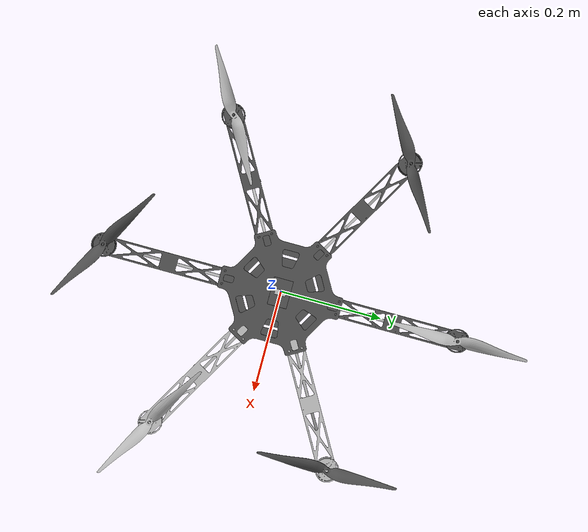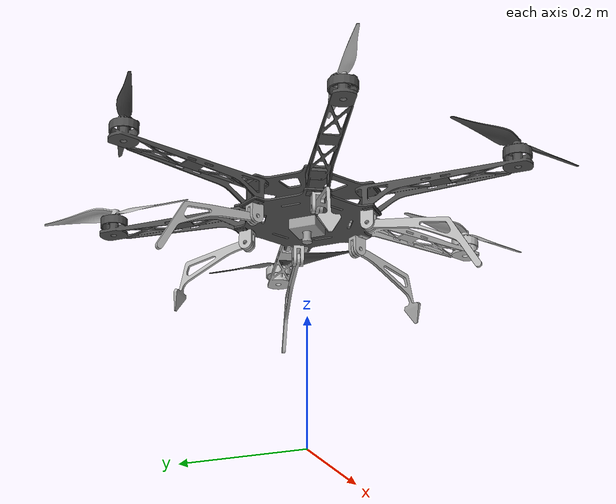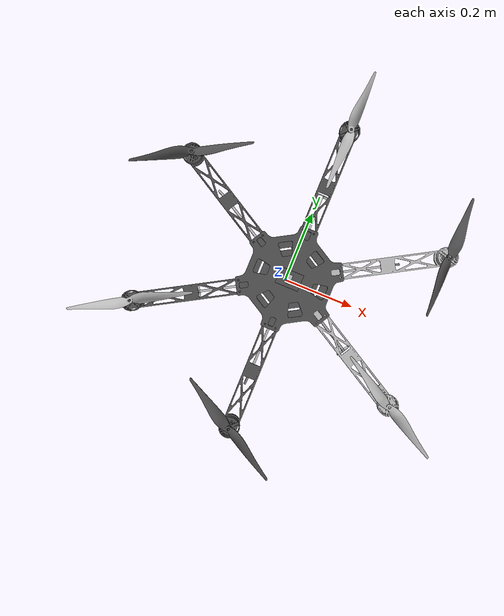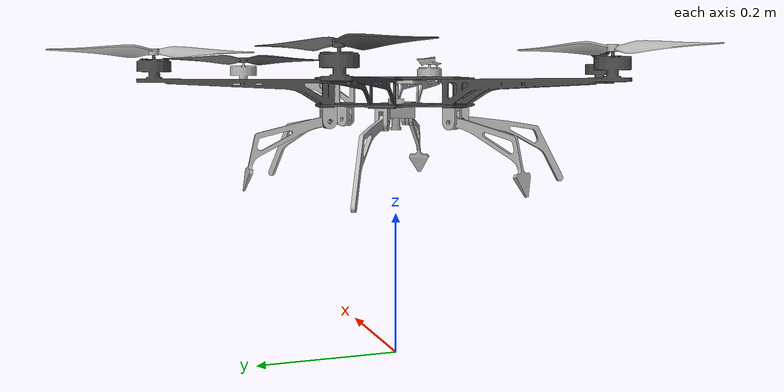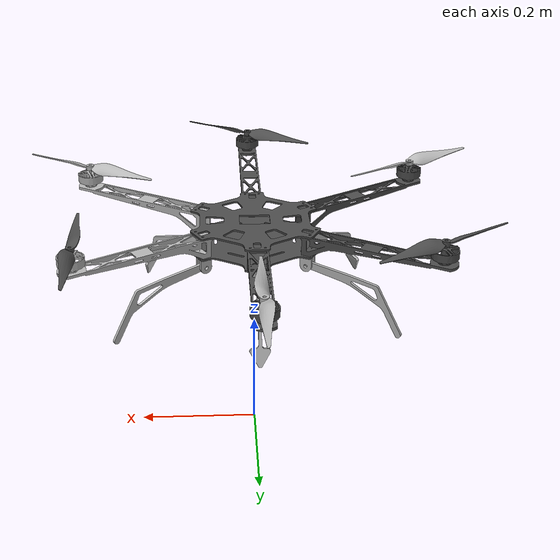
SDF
<?xml version="1.0" ?>
<sdf version="1.5">
  <model name="f550_amazing">
    <static>false</static>
    <pose>0 0 0.35 0 0 0</pose>

<!-- ######################################## LOWER_PLATE # ######################################## -->
    <link name="base_link">
	<gravity>true</gravity>
	<pose>0 0 0.0015 0 0 0</pose>

      <inertial>
        <pose frame=''>0.001005 0 -0.0090035 0 -0 0</pose>
        <mass>0.6</mass>
        <inertia>
          <ixx>0.011</ixx>
          <ixy>0</ixy>
          <ixz>0</ixz>
          <iyy>0.015</iyy>
          <iyz>0</iyz>
          <izz>0.021</izz>
        </inertia>
      </inertial>

      <visual name="base_link_visual">
        <geometry>
          <mesh>
            <scale>0.001 0.001 0.001</scale>
            <uri>model://f550_amazing/meshes/Lower_plate_CG.STL</uri>
          </mesh>
        </geometry>
        <material>
          <script>
            <name>Gazebo/DarkGrey</name>
            <uri>file://media/materials/scripts/gazebo.material</uri>
          </script>
        </material>
      </visual>
    </link>
<!-- ####################################### /LOWER_PLATE # ######################################## -->

<!-- ######################################## TOP_PLATE ############################################ -->
    <link name="Top_plate_link">
	<gravity>true</gravity>
	<pose>0 0 0.0375 0 0 2.09439510239</pose>

      <inertial>
        <mass>0.1</mass>
        <inertia>
          <ixx>0.001</ixx>
          <ixy>0</ixy>
          <ixz>0</ixz>
          <iyy>0.001</iyy>
          <iyz>0</iyz>
          <izz>0.001</izz>
        </inertia>
      </inertial>

      <visual name="visual_Top_plate">
        <geometry>
          <mesh>
            <scale>0.001 0.001 0.001</scale>
            <uri>model://f550_amazing/meshes/Top_plate_CG.STL</uri>
          </mesh>
        </geometry>
        <material>
          <script>
            <name>Gazebo/DarkGrey</name>
            <uri>file://media/materials/scripts/gazebo.material</uri>
          </script>
        </material>
      </visual>
    </link>

	<joint name='Lower_Top_joint' type='fixed'>
	  	<child>Top_plate_link</child>
	  	<parent>base_link</parent>
	</joint>
<!-- ####################################### /TOP_PLATE ############################################ -->

<!-- ##########################################  CAMERA  ########################################### -->
    <link name='camera_down_link'>
      <pose>0 0 0 0 1.57079 3.14159265359</pose>

	  <inertial>
        <mass>0.001</mass>
          <inertia>
			<ixx>0.001</ixx>
			<ixy>0</ixy>
			<ixz>0</ixz>
			<iyy>0.001</iyy>
			<iyz>0</iyz>
			<izz>0.001</izz>
          </inertia>
      </inertial>
	  <gravity>1</gravity>
	  <self_collide>0</self_collide>
      <kinematic>0</kinematic>

	  <visual name='visual_camera_down'>
		<pose>0 0 0 0 -1.57079 0</pose>
		<geometry>
          <mesh>
            <scale>0.001 0.001 0.001</scale>
            <uri>model://f550_amazing/meshes/oCam-1MGN-U_CG.stl</uri>
          </mesh>
        </geometry>
        <material>
          <script>
            <name>Gazebo/Grey</name>
            <uri>file://media/materials/scripts/gazebo.material</uri>
          </script>
        </material>
      </visual>

      <sensor name='camera' type='camera'>
        <always_on>1</always_on>
        <update_rate>30</update_rate>
        <camera name='__default__'>
          <horizontal_fov>1.13446</horizontal_fov>
          <image>
            <width>1280</width>
            <height>720</height>
          </image>
          <clip>
            <near>0.1</near>
            <far>100</far>
          </clip>
        </camera>
        <plugin name='camera_plugin' filename='libgazebo_ros_camera.so'>
          <alwaysOn>true</alwaysOn>
          <imageTopicName>image_raw_down</imageTopicName>
          <cameraInfoTopicName>camera_info</cameraInfoTopicName>
          <updateRate>10.0</updateRate>
          <cameraName>uav_camera</cameraName>
          <frameName>f550_amazing/robot_camera_down</frameName>
          <CxPrime>640.5</CxPrime>
          <Cx>640.5</Cx>
          <Cy>360.5</Cy>
          <hackBaseline>0</hackBaseline>
          <focalLength>1004.603218</focalLength>
          <distortionK1>0.0</distortionK1>
          <distortionK2>0.0</distortionK2>
          <distortionK3>0.0</distortionK3>
          <distortionT1>0.0</distortionT1>
          <distortionT2>0.0</distortionT2>
          <robotNamespace>/</robotNamespace>
        </plugin>
      </sensor>

    </link>

	<joint name='camera_down_joint' type='fixed'>
        <parent>base_link</parent>
        <child>camera_down_link</child>
	</joint>

<!-- ##########################################  /CAMERA  ########################################## -->

<!-- ##########################################  IMU  ############################################## -->
    <link name='imu_link'>
      <pose frame=''>0 0 0 0 0 3.1415927</pose>
      <inertial>
        <pose frame=''>0 0 0 0 -0 0</pose>
        <mass>0.015</mass>
        <inertia>
          <ixx>1e-05</ixx>
          <ixy>0</ixy>
          <ixz>0</ixz>
          <iyy>1e-05</iyy>
          <iyz>0</iyz>
          <izz>1e-05</izz>
        </inertia>
      </inertial>

      <visual name="visual_imu">
	      <pose frame=''>0 0 0 0 0 3.1415927</pose>
        <geometry>
          <box>
			<size>0.01 0.02 0.02</size>
          </box>
        </geometry>
      </visual>
    </link>

    <joint name='imu_joint' type='revolute'>
      <child>imu_link</child>
      <parent>base_link</parent>
      <axis>
        <xyz>1 0 0</xyz>
        <limit>
          <lower>0</lower>
          <upper>0</upper>
          <effort>0</effort>
          <velocity>0</velocity>
        </limit>
        <dynamics>
          <spring_reference>0</spring_reference>
          <spring_stiffness>0</spring_stiffness>
        </dynamics>
        <use_parent_model_frame>1</use_parent_model_frame>
      </axis>
    </joint>
<!-- #########################################  /IMU  ############################################## -->

<!-- ############################################# ARM1 ############################################ -->
    <link name="Arm1_link">
	<gravity>true</gravity>
	<pose>0 0.1874 0.009875004 0 0 1.57079632679</pose>

	<inertial>
	<mass>0.1</mass>
		<inertia>
			<ixx>0.001</ixx>
			<ixy>0</ixy>
			<ixz>0</ixz>
			<iyy>0.001</iyy>
			<iyz>0</iyz>
			<izz>0.001</izz>
		</inertia>
	</inertial>

		<visual name="visual_Arm1">
			<geometry>
				<mesh>
					<scale>0.001 0.001 0.001</scale>
					<uri>model://f550_amazing/meshes/Arm_CG.STL</uri>
				</mesh>
			</geometry>
			<material>
				<script>
					<name>Gazebo/DarkGrey</name>
					<uri>file://media/materials/scripts/gazebo.material</uri>
				</script>
			</material>
		</visual>
	</link>

	<joint name='Lower_Arm1_joint' type='fixed'>
	  	<child>Arm1_link</child>
	  	<parent>base_link</parent>
	</joint>
<!-- ############################################ /ARM1 ############################################ -->

<!-- ############################################# ARM2 ############################################ -->
    <link name="Arm2_link">
	<gravity>true</gravity>
	<pose>0.162293160669 0.0937 0.009875004 0 0 0.523598775598</pose>

      <inertial>
        <mass>0.1</mass>
        <inertia>
          <ixx>0.001</ixx>
          <ixy>0</ixy>
          <ixz>0</ixz>
          <iyy>0.001</iyy>
          <iyz>0</iyz>
          <izz>0.001</izz>
        </inertia>
      </inertial>

      <visual name="visual_Arm2">
        <geometry>
          <mesh>
            <scale>0.001 0.001 0.001</scale>
            <uri>model://f550_amazing/meshes/Arm_CG.STL</uri>
          </mesh>
        </geometry>
      </visual>
    </link>

	<joint name='Lower_Arm2_joint' type='fixed'>
	  	<child>Arm2_link</child>
	  	<parent>base_link</parent>
	</joint>
<!-- ############################################ /ARM2 ############################################ -->

<!-- ############################################# ARM3 ############################################ -->
    <link name="Arm3_link">
	<gravity>true</gravity>
	<pose>0.162293160669 -0.0937 0.009875004 0 0 -0.523598775598</pose>

      <inertial>
        <mass>0.1</mass>
        <inertia>
          <ixx>0.001</ixx>
          <ixy>0</ixy>
          <ixz>0</ixz>
          <iyy>0.001</iyy>
          <iyz>0</iyz>
          <izz>0.001</izz>
        </inertia>
      </inertial>

      <visual name="visual_Arm3">
        <geometry>
          <mesh>
            <scale>0.001 0.001 0.001</scale>
            <uri>model://f550_amazing/meshes/Arm_CG.STL</uri>
          </mesh>
        </geometry>
      </visual>
    </link>

	<joint name='Lower_Arm3_joint' type='fixed'>
	  	<child>Arm3_link</child>
	  	<parent>base_link</parent>
	</joint>
<!-- ############################################ /ARM3 ############################################ -->

<!-- ############################################# ARM4 ############################################ -->
    <link name="Arm4_link">
	<gravity>true</gravity>
	<pose>0 -0.1874 0.009875004 0 0 -1.57079632679</pose>

      <inertial>
        <mass>0.1</mass>
        <inertia>
          <ixx>0.001</ixx>
          <ixy>0</ixy>
          <ixz>0</ixz>
          <iyy>0.001</iyy>
          <iyz>0</iyz>
          <izz>0.001</izz>
        </inertia>
      </inertial>

      <visual name="visual_Arm4">
        <geometry>
          <mesh>
            <scale>0.001 0.001 0.001</scale>
            <uri>model://f550_amazing/meshes/Arm_CG.STL</uri>
          </mesh>
        </geometry>
        <material>
          <script>
            <name>Gazebo/DarkGrey</name>
            <uri>file://media/materials/scripts/gazebo.material</uri>
          </script>
        </material>
      </visual>
    </link>

	<joint name='Lower_Arm4_joint' type='fixed'>
	  	<child>Arm4_link</child>
	  	<parent>base_link</parent>
	</joint>
<!-- ############################################ /ARM4 ############################################ -->

<!-- ############################################# ARM5 ############################################ -->
    <link name="Arm5_link">
	<gravity>true</gravity>
	<pose>-0.162293160669 -0.0937 0.009875004 0 0 3.66519142919</pose>

      <inertial>
        <mass>0.1</mass>
        <inertia>
          <ixx>0.001</ixx>
          <ixy>0</ixy>
          <ixz>0</ixz>
          <iyy>0.001</iyy>
          <iyz>0</iyz>
          <izz>0.001</izz>
        </inertia>
      </inertial>

      <visual name="visual_Arm5">
        <geometry>
          <mesh>
            <scale>0.001 0.001 0.001</scale>
            <uri>model://f550_amazing/meshes/Arm_CG.STL</uri>
          </mesh>
        </geometry>
        <material>
          <script>
            <name>Gazebo/DarkGrey</name>
            <uri>file://media/materials/scripts/gazebo.material</uri>
          </script>
        </material>
      </visual>
    </link>

	<joint name='Lower_Arm5_joint' type='fixed'>
	  	<child>Arm5_link</child>
	  	<parent>base_link</parent>
	</joint>
<!-- ############################################ /ARM5 ############################################ -->

<!-- ############################################# ARM6 ############################################ -->
    <link name="Arm6_link">
	<gravity>true</gravity>
	<pose>-0.162293160669 0.0937 0.009875004 0 0 2.61799387799</pose>

      <inertial>
        <mass>0.1</mass>
        <inertia>
          <ixx>0.001</ixx>
          <ixy>0</ixy>
          <ixz>0</ixz>
          <iyy>0.001</iyy>
          <iyz>0</iyz>
          <izz>0.001</izz>
        </inertia>
      </inertial>

      <visual name="visual_Arm6">
        <geometry>
          <mesh>
            <scale>0.001 0.001 0.001</scale>
            <uri>model://f550_amazing/meshes/Arm_CG.STL</uri>
          </mesh>
        </geometry>
        <material>
          <script>
            <name>Gazebo/DarkGrey</name>
            <uri>file://media/materials/scripts/gazebo.material</uri>
          </script>
        </material>
      </visual>
    </link>

	<joint name='Lower_Arm6_joint' type='fixed'>
	  	<child>Arm6_link</child>
	  	<parent>base_link</parent>
	</joint>
<!-- ############################################ /ARM6 ############################################ -->

<!-- #########################################  ROTOR0  ############################################ -->
<link name='rotor_0'>
      <pose frame=''>-0.279726205 0.1615 0.07 0 0 2.09439510239</pose>
      <inertial>
        <mass>0.005</mass>
        <inertia>
          <ixx>9.75e-07</ixx>
          <ixy>0</ixy>
          <ixz>0</ixz>
          <iyy>0.000273104</iyy>
          <iyz>0</iyz>
          <izz>0.000274004</izz>
        </inertia>
      </inertial>

      <visual name='rotor_0_visual'>
        <geometry>
          <mesh>
            <scale>0.001 0.001 0.001</scale>
            <uri>model://f550_amazing/meshes/prop_cw_CG.stl</uri>
          </mesh>
        </geometry>
        <material>
          <script>
            <name>Gazebo/DarkGrey</name>
            <uri>file://media/materials/scripts/gazebo.material</uri>
          </script>
        </material>
      </visual>
    </link>

    <joint name='rotor_0_joint' type='revolute'>
      <child>rotor_0</child>
      <parent>base_link</parent>
      <axis>
        <xyz>0.046 0.0827 1.8977</xyz>
        <limit>
          <lower>-1e+16</lower>
          <upper>1e+16</upper>
          <effort>10</effort>
          <velocity>-1</velocity>
        </limit>
        <dynamics>
          <damping>0.005</damping>
        </dynamics>
        <use_parent_model_frame>1</use_parent_model_frame>
      </axis>
      <physics>
        <ode>
          <implicit_spring_damper>1</implicit_spring_damper>
        </ode>
      </physics>
    </joint>
<!-- ########################################  /ROTOR0  ############################################ -->

<!-- #########################################  ROTOR1  ############################################ -->
<link name='rotor_1'>
      <pose frame=''>0.279726205 -0.1615 0.07 0 0 -2.09439510239</pose>
      <inertial>
        <mass>0.005</mass>
        <inertia>
          <ixx>9.75e-07</ixx>
          <ixy>0</ixy>
          <ixz>0</ixz>
          <iyy>0.000273104</iyy>
          <iyz>0</iyz>
          <izz>0.000274004</izz>
        </inertia>
      </inertial>

      <visual name='rotor_1_visual'>
        <geometry>
          <mesh>
            <scale>0.001 0.001 0.001</scale>
            <uri>model://f550_amazing/meshes/prop_ccw_CG.stl</uri>
          </mesh>
        </geometry>
      </visual>
    </link>

    <joint name='rotor_1_joint' type='revolute'>
      <child>rotor_1</child>
      <parent>base_link</parent>
      <axis>
        <xyz>0.046 0.0827 1.8977</xyz>
        <limit>
          <lower>-1e+16</lower>
          <upper>1e+16</upper>
          <effort>10</effort>
          <velocity>-1</velocity>
        </limit>
        <dynamics>
          <damping>0.005</damping>
        </dynamics>
        <use_parent_model_frame>1</use_parent_model_frame>
      </axis>
      <physics>
        <ode>
          <implicit_spring_damper>1</implicit_spring_damper>
        </ode>
      </physics>
    </joint>
<!-- ########################################  /ROTOR1  ############################################ -->

<!-- #########################################  ROTOR2  ############################################ -->
<link name='rotor_2'>
      <pose frame=''>-0.279726205 -0.1615 0.07 0 0 2.09439510239</pose>
      <inertial>
        <mass>0.005</mass>
        <inertia>
          <ixx>9.75e-07</ixx>
          <ixy>0</ixy>
          <ixz>0</ixz>
          <iyy>0.000273104</iyy>
          <iyz>0</iyz>
          <izz>0.000274004</izz>
        </inertia>
      </inertial>

      <visual name='rotor_2_visual'>
        <geometry>
          <mesh>
            <scale>0.001 0.001 0.001</scale>
            <uri>model://f550_amazing/meshes/prop_ccw_CG.stl</uri>
          </mesh>
        </geometry>
      </visual>
    </link>

    <joint name='rotor_2_joint' type='revolute'>
      <child>rotor_2</child>
      <parent>base_link</parent>
      <axis>
        <xyz>0.046 0.0827 1.8977</xyz>
        <limit>
          <lower>-1e+16</lower>
          <upper>1e+16</upper>
          <effort>10</effort>
          <velocity>-1</velocity>
        </limit>
        <dynamics>
          <damping>0.005</damping>
        </dynamics>
        <use_parent_model_frame>1</use_parent_model_frame>
      </axis>
      <physics>
        <ode>
          <implicit_spring_damper>1</implicit_spring_damper>
        </ode>
      </physics>
    </joint>
<!-- ########################################  /ROTOR2  ############################################ -->

<!-- #########################################  ROTOR3  ############################################ -->
<link name='rotor_3'>
      <pose frame=''>0.279726205 0.1615 0.07 0 0 0</pose>
      <inertial>
        <mass>0.005</mass>
        <inertia>
          <ixx>9.75e-07</ixx>
          <ixy>0</ixy>
          <ixz>0</ixz>
          <iyy>0.000273104</iyy>
          <iyz>0</iyz>
          <izz>0.000274004</izz>
        </inertia>
      </inertial>

      <visual name='rotor_3_visual'>
        <geometry>
          <mesh>
            <scale>0.001 0.001 0.001</scale>
            <uri>model://f550_amazing/meshes/prop_cw_CG.stl</uri>
          </mesh>
        </geometry>
        <material>
          <script>
            <name>Gazebo/DarkGrey</name>
            <uri>file://media/materials/scripts/gazebo.material</uri>
          </script>
        </material>
      </visual>
    </link>

    <joint name='rotor_3_joint' type='revolute'>
      <child>rotor_3</child>
      <parent>base_link</parent>
      <axis>
        <xyz>0.046 0.0827 1.8977</xyz>
        <limit>
          <lower>-1e+16</lower>
          <upper>1e+16</upper>
          <effort>10</effort>
          <velocity>-1</velocity>
        </limit>
        <dynamics>
          <damping>0.005</damping>
        </dynamics>
        <use_parent_model_frame>1</use_parent_model_frame>
      </axis>
      <physics>
        <ode>
          <implicit_spring_damper>1</implicit_spring_damper>
        </ode>
      </physics>
    </joint>
<!-- ########################################  /ROTOR3  ############################################ -->

<!-- #########################################  ROTOR4  ############################################ -->
<link name='rotor_4'>
      <pose frame=''>0 0.323 0.07 0 0 0</pose>
      <inertial>
        <mass>0.005</mass>
        <inertia>
          <ixx>9.75e-07</ixx>
          <ixy>0</ixy>
          <ixz>0</ixz>
          <iyy>0.000273104</iyy>
          <iyz>0</iyz>
          <izz>0.000274004</izz>
        </inertia>
      </inertial>

      <visual name='rotor_4_visual'>
        <geometry>
          <mesh>
            <scale>0.001 0.001 0.001</scale>
            <uri>model://f550_amazing/meshes/prop_ccw_CG.stl</uri>
          </mesh>
        </geometry>
      </visual>
    </link>

    <joint name='rotor_4_joint' type='revolute'>
      <child>rotor_4</child>
      <parent>base_link</parent>
      <axis>
        <xyz>0.046 0.0827 1.8977</xyz>
        <limit>
          <lower>-1e+16</lower>
          <upper>1e+16</upper>
          <effort>10</effort>
          <velocity>-1</velocity>
        </limit>
        <dynamics>
          <damping>0.005</damping>
        </dynamics>
        <use_parent_model_frame>1</use_parent_model_frame>
      </axis>
      <physics>
        <ode>
          <implicit_spring_damper>1</implicit_spring_damper>
        </ode>
      </physics>
    </joint>
<!-- ########################################  /ROTOR4  ############################################ -->

<!-- #########################################  ROTOR5  ############################################ -->
<link name='rotor_5'>
      <pose frame=''>0 -0.323 0.07 0 0 -2.09439510239</pose>
      <inertial>
        <mass>0.005</mass>
        <inertia>
          <ixx>9.75e-07</ixx>
          <ixy>0</ixy>
          <ixz>0</ixz>
          <iyy>0.000273104</iyy>
          <iyz>0</iyz>
          <izz>0.000274004</izz>
        </inertia>
      </inertial>

      <visual name='rotor_5_visual'>
        <geometry>
          <mesh>
            <scale>0.001 0.001 0.001</scale>
            <uri>model://f550_amazing/meshes/prop_ccw_CG.stl</uri>
          </mesh>
        </geometry>
        <material>
          <script>
            <name>Gazebo/DarkGrey</name>
            <uri>file://media/materials/scripts/gazebo.material</uri>
          </script>
        </material>
      </visual>
    </link>

    <joint name='rotor_5_joint' type='revolute'>
      <child>rotor_5</child>
      <parent>base_link</parent>
      <axis>
        <xyz>0.046 0.0827 1.8977</xyz>
        <limit>
          <lower>-1e+16</lower>
          <upper>1e+16</upper>
          <effort>10</effort>
          <velocity>-1</velocity>
        </limit>
        <dynamics>
          <damping>0.005</damping>
        </dynamics>
        <use_parent_model_frame>1</use_parent_model_frame>
      </axis>
      <physics>
        <ode>
          <implicit_spring_damper>1</implicit_spring_damper>
        </ode>
      </physics>
    </joint>
<!-- ########################################  /ROTOR5  ############################################ -->

<!-- ######################################### grip1 ############################################### -->

        <link name="cylinder1">
            <pose>0 -0.0967 0 0 0 0</pose>
            <inertial>
                <mass>0.01</mass>
                <inertia>
                    <ixx>0.01</ixx>
                    <ixy>0</ixy>
                    <ixz>0</ixz>
                    <iyy>0.01</iyy>
                    <iyz>0</iyz>
                    <izz>0.01</izz>
                </inertia>
            </inertial>

			<visual name="visual">
				<geometry>
					<mesh>
						<scale>0.001 0.001 0.001</scale>
						<uri>model://f550_amazing/meshes/cylinder.stl</uri>
					</mesh>
				</geometry>
			</visual>
			</link>

        <joint name="base_link_cylinder1" type="fixed">
            <child>cylinder1</child>
            <parent>base_link</parent>
        </joint>

        <link name="grip1">
            <pose>0 -0.0967 -0.02 0 0 0</pose>
            <inertial>
                <mass>0.01</mass>
                <inertia>
                    <ixx>0.01</ixx>
                    <ixy>0</ixy>
                    <ixz>0</ixz>
                    <iyy>0.01</iyy>
                    <iyz>0</iyz>
                    <izz>0.01</izz>
                </inertia>
            </inertial>

            <collision name="collision">
				<geometry>
					<mesh>
						<scale>0.001 0.001 0.001</scale>
						<uri>model://f550_amazing/meshes/grip_long.stl</uri>
					</mesh>
				</geometry>
				<surface>
					<contact>
						<ode>
							<min_depth>0.001</min_depth>
						</ode>
					</contact>
					<friction>
						<ode>
							<mu>50</mu>
							<mu2>50</mu2>
						</ode>
					</friction>
				</surface>
            </collision>

            <visual name="visual">
				<geometry>
					<mesh>
						<scale>0.001 0.001 0.001</scale>
						<uri>model://f550_amazing/meshes/grip_long.stl</uri>
					</mesh>
				</geometry>
            </visual>
        </link>

        <joint name="cylinder_grip1" type="revolute">
            <pose>0 0 0 0 0 0</pose>
            <child>grip1</child>
            <parent>cylinder1</parent>
            <axis>
                <xyz>1 0 0</xyz>
				<limit>
					<lower>0.001</lower>
					<upper>1.570</upper>
					<velocity>1</velocity>
				</limit>
				<dynamics>
					<damping>5</damping>
					<friction>0.5</friction>
				</dynamics>
			</axis>
			<physics>
				<ode>
					<implicit_spring_damper>1</implicit_spring_damper>'
				</ode>
			</physics>
        </joint>

<!-- ######################################### /grip1 ############################################### -->

<!-- ######################################### grip2 ############################################### -->

        <link name="cylinder2">
            <pose>0.0837446656546 0.04835 0 0 0 2.09439510239</pose>
            <inertial>
                <mass>0.01</mass>
                <inertia>
                    <ixx>0.01</ixx>
                    <ixy>0</ixy>
                    <ixz>0</ixz>
                    <iyy>0.01</iyy>
                    <iyz>0</iyz>
                    <izz>0.01</izz>
                </inertia>
            </inertial>

			<visual name="visual">
				<geometry>
					<mesh>
						<scale>0.001 0.001 0.001</scale>
						<uri>model://f550_amazing/meshes/cylinder.stl</uri>
					</mesh>
				</geometry>
			</visual>
			</link>

        <joint name="base_link_cylinder2" type="fixed">
            <child>cylinder2</child>
            <parent>base_link</parent>
        </joint>

        <link name="grip2">
            <pose>0.0837446656546 0.04835 -0.02 0 0 2.09439510239</pose>
            <inertial>
                <mass>0.01</mass>
                <inertia>
                    <ixx>0.01</ixx>
                    <ixy>0</ixy>
                    <ixz>0</ixz>
                    <iyy>0.01</iyy>
                    <iyz>0</iyz>
                    <izz>0.01</izz>
                </inertia>
            </inertial>

            <collision name="collision">
				<geometry>
					<mesh>
						<scale>0.001 0.001 0.001</scale>
						<uri>model://f550_amazing/meshes/grip_long.stl</uri>
					</mesh>
				</geometry>
				<surface>
					<contact>
						<ode>
							<min_depth>0.001</min_depth>
						</ode>
					</contact>
					<friction>
						<ode>
							<mu>50</mu>
							<mu2>50</mu2>
						</ode>
					</friction>
				</surface>
            </collision>

            <visual name="visual">
				<geometry>
					<mesh>
						<scale>0.001 0.001 0.001</scale>
						<uri>model://f550_amazing/meshes/grip_long.stl</uri>
					</mesh>
				</geometry>
            </visual>
        </link>

        <joint name="cylinder_grip2" type="revolute">
            <pose>0 0 0 0 0 0</pose>
            <child>grip2</child>
            <parent>cylinder2</parent>
            <axis>
                <xyz>1 0 0</xyz>
				<limit>
					<lower>0.001</lower>
					<upper>1.570</upper>
					<velocity>1</velocity>
				</limit>
				<dynamics>
					<damping>5</damping>
					<friction>0.5</friction>
				</dynamics>
			</axis>
			<physics>
				<ode>
					<implicit_spring_damper>1</implicit_spring_damper>'
				</ode>
			</physics>
        </joint>

<!-- ######################################### /grip2 ############################################### -->

<!-- ######################################### grip3 ############################################### -->

        <link name="cylinder3">
            <pose>0.0837446656546 -0.04835 0 0 0 1.0471975512</pose>
            <inertial>
                <mass>0.01</mass>
                <inertia>
                    <ixx>0.01</ixx>
                    <ixy>0</ixy>
                    <ixz>0</ixz>
                    <iyy>0.01</iyy>
                    <iyz>0</iyz>
                    <izz>0.01</izz>
                </inertia>
            </inertial>

			<visual name="visual">
				<geometry>
					<mesh>
						<scale>0.001 0.001 0.001</scale>
						<uri>model://f550_amazing/meshes/cylinder.stl</uri>
					</mesh>
				</geometry>
			</visual>
			</link>

        <joint name="base_link_cylinder3" type="fixed">
            <child>cylinder3</child>
            <parent>base_link</parent>
        </joint>

        <link name="grip3">
            <pose>0.0837446656546 -0.04835 -0.02 0 0 1.0471975512</pose>
            <inertial>
                <mass>0.01</mass>
                <inertia>
                    <ixx>0.01</ixx>
                    <ixy>0</ixy>
                    <ixz>0</ixz>
                    <iyy>0.01</iyy>
                    <iyz>0</iyz>
                    <izz>0.01</izz>
                </inertia>
            </inertial>

            <collision name="collision">
				<geometry>
					<mesh>
						<scale>0.001 0.001 0.001</scale>
						<uri>model://f550_amazing/meshes/grip.stl</uri>
					</mesh>
				</geometry>
				<surface>
					<contact>
						<ode>
							<min_depth>0.001</min_depth>
						</ode>
					</contact>
					<friction>
						<ode>
							<mu>50</mu>
							<mu2>50</mu2>
						</ode>
					</friction>
				</surface>
            </collision>

            <visual name="visual">
				<geometry>
					<mesh>
						<scale>0.001 0.001 0.001</scale>
						<uri>model://f550_amazing/meshes/grip.stl</uri>
					</mesh>
				</geometry>
            </visual>
        </link>

        <joint name="cylinder_grip3" type="revolute">
            <pose>0 0 0 0 0 0</pose>
            <child>grip3</child>
            <parent>cylinder3</parent>
            <axis>
                <xyz>1 0 0</xyz>
				<limit>
					<lower>0.001</lower>
					<upper>1.570</upper>
					<velocity>1</velocity>
				</limit>
				<dynamics>
					<damping>5</damping>
					<friction>0.5</friction>
				</dynamics>
			</axis>
			<physics>
				<ode>
					<implicit_spring_damper>1</implicit_spring_damper>'
				</ode>
			</physics>
        </joint>

<!-- ######################################### /grip3 ############################################### -->

<!-- ######################################### grip4 ############################################### -->

        <link name="cylinder4">
            <pose>0 0.0967 0 0 0 0</pose>
            <inertial>
                <mass>0.01</mass>
                <inertia>
                    <ixx>0.01</ixx>
                    <ixy>0</ixy>
                    <ixz>0</ixz>
                    <iyy>0.01</iyy>
                    <iyz>0</iyz>
                    <izz>0.01</izz>
                </inertia>
            </inertial>

			<visual name="visual">
				<geometry>
					<mesh>
						<scale>0.001 0.001 0.001</scale>
						<uri>model://f550_amazing/meshes/cylinder.stl</uri>
					</mesh>
				</geometry>
			</visual>
			</link>

        <joint name="base_link_cylinder4" type="fixed">
            <child>cylinder4</child>
            <parent>base_link</parent>
        </joint>

        <link name="grip4">
            <pose>0 0.0967 -0.02 0 0 3.14159265359</pose>
            <inertial>
                <mass>0.01</mass>
                <inertia>
                    <ixx>0.01</ixx>
                    <ixy>0</ixy>
                    <ixz>0</ixz>
                    <iyy>0.01</iyy>
                    <iyz>0</iyz>
                    <izz>0.01</izz>
                </inertia>
            </inertial>

            <collision name="collision">
				<geometry>
					<mesh>
						<scale>0.001 0.001 0.001</scale>
						<uri>model://f550_amazing/meshes/grip.stl</uri>
					</mesh>
				</geometry>
				<surface>
					<contact>
						<ode>
							<min_depth>0.001</min_depth>
						</ode>
					</contact>
					<friction>
						<ode>
							<mu>50</mu>
							<mu2>50</mu2>
						</ode>
					</friction>
				</surface>
            </collision>

            <visual name="visual">
				<geometry>
					<mesh>
						<scale>0.001 0.001 0.001</scale>
						<uri>model://f550_amazing/meshes/grip.stl</uri>
					</mesh>
				</geometry>
            </visual>
        </link>

        <joint name="cylinder_grip4" type="revolute">
            <pose>0 0 0 0 0 0</pose>
            <child>grip4</child>
            <parent>cylinder4</parent>
            <axis>
                <xyz>1 0 0</xyz>
				<limit>
					<lower>0.001</lower>
					<upper>1.570</upper>
					<velocity>1</velocity>
				</limit>
				<dynamics>
					<damping>5</damping>
					<friction>0.5</friction>
				</dynamics>
			</axis>
			<physics>
				<ode>
					<implicit_spring_damper>1</implicit_spring_damper>'
				</ode>
			</physics>
        </joint>

<!-- ######################################### /grip4 ############################################### -->

<!-- ######################################### grip5 ############################################### -->

        <link name="cylinder5">
            <pose>-0.0837446656546 0.04835 0 0 0 4.18879020479</pose>
            <inertial>
                <mass>0.01</mass>
                <inertia>
                    <ixx>0.01</ixx>
                    <ixy>0</ixy>
                    <ixz>0</ixz>
                    <iyy>0.01</iyy>
                    <iyz>0</iyz>
                    <izz>0.01</izz>
                </inertia>
            </inertial>

			<visual name="visual">
				<geometry>
					<mesh>
						<scale>0.001 0.001 0.001</scale>
						<uri>model://f550_amazing/meshes/cylinder.stl</uri>
					</mesh>
				</geometry>
			</visual>
			</link>

        <joint name="base_link_cylinder5" type="fixed">
            <child>cylinder5</child>
            <parent>base_link</parent>
        </joint>

        <link name="grip5">
            <pose>-0.0837446656546 0.04835 -0.02 0 0 4.18879020479</pose>
            <inertial>
                <mass>0.01</mass>
                <inertia>
                    <ixx>0.01</ixx>
                    <ixy>0</ixy>
                    <ixz>0</ixz>
                    <iyy>0.01</iyy>
                    <iyz>0</iyz>
                    <izz>0.01</izz>
                </inertia>
            </inertial>

            <collision name="collision">
				<geometry>
					<mesh>
						<scale>0.001 0.001 0.001</scale>
						<uri>model://f550_amazing/meshes/grip_long.stl</uri>
					</mesh>
				</geometry>
				<surface>
					<contact>
						<ode>
							<min_depth>0.001</min_depth>
						</ode>
					</contact>
					<friction>
						<ode>
							<mu>50</mu>
							<mu2>50</mu2>
						</ode>
					</friction>
				</surface>
            </collision>

            <visual name="visual">
				<geometry>
					<mesh>
						<scale>0.001 0.001 0.001</scale>
						<uri>model://f550_amazing/meshes/grip_long.stl</uri>
					</mesh>
				</geometry>
            </visual>
        </link>

        <joint name="cylinder_grip5" type="revolute">
            <pose>0 0 0 0 0 0</pose>
            <child>grip5</child>
            <parent>cylinder5</parent>
            <axis>
                <xyz>1 0 0</xyz>
				<limit>
					<lower>0.001</lower>
					<upper>1.570</upper>
					<velocity>1</velocity>
				</limit>
				<dynamics>
					<damping>5</damping>
					<friction>0.5</friction>
				</dynamics>
			</axis>
			<physics>
				<ode>
					<implicit_spring_damper>1</implicit_spring_damper>'
				</ode>
			</physics>
        </joint>

<!-- ######################################### /grip5 ############################################### -->

<!-- ######################################### grip6 ############################################### -->

        <link name="cylinder6">
            <pose>-0.0837446656546 -0.04835 0 0 0 -1.0471975512</pose>
            <inertial>
                <mass>0.01</mass>
                <inertia>
                    <ixx>0.01</ixx>
                    <ixy>0</ixy>
                    <ixz>0</ixz>
                    <iyy>0.01</iyy>
                    <iyz>0</iyz>
                    <izz>0.01</izz>
                </inertia>
            </inertial>

			<visual name="visual">
				<geometry>
					<mesh>
						<scale>0.001 0.001 0.001</scale>
						<uri>model://f550_amazing/meshes/cylinder.stl</uri>
					</mesh>
				</geometry>
			</visual>
			</link>

        <joint name="base_link_cylinder6" type="fixed">
            <child>cylinder6</child>
            <parent>base_link</parent>
        </joint>

        <link name="grip6">
            <pose>-0.0837446656546 -0.04835 -0.02 0 0 -1.0471975512</pose>
            <inertial>
                <mass>0.01</mass>
                <inertia>
                    <ixx>0.01</ixx>
                    <ixy>0</ixy>
                    <ixz>0</ixz>
                    <iyy>0.01</iyy>
                    <iyz>0</iyz>
                    <izz>0.01</izz>
                </inertia>
            </inertial>

            <collision name="collision">
				<geometry>
					<mesh>
						<scale>0.001 0.001 0.001</scale>
						<uri>model://f550_amazing/meshes/grip.stl</uri>
					</mesh>
				</geometry>
				<surface>
					<contact>
						<ode>
							<min_depth>0.001</min_depth>
						</ode>
					</contact>
					<friction>
						<ode>
							<mu>50</mu>
							<mu2>50</mu2>
						</ode>
					</friction>
				</surface>
            </collision>

            <visual name="visual">
				<geometry>
					<mesh>
						<scale>0.001 0.001 0.001</scale>
						<uri>model://f550_amazing/meshes/grip.stl</uri>
					</mesh>
				</geometry>
            </visual>
        </link>

        <joint name="cylinder_grip6" type="revolute">
            <pose>0 0 0 0 0 0</pose>
            <child>grip6</child>
            <parent>cylinder6</parent>
            <axis>
                <xyz>1 0 0</xyz>
				<limit>
					<lower>0.001</lower>
					<upper>1.570</upper>
					<velocity>1</velocity>
				</limit>
				<dynamics>
					<damping>5</damping>
					<friction>0.5</friction>
				</dynamics>
			</axis>
			<physics>
				<ode>
					<implicit_spring_damper>1</implicit_spring_damper>'
				</ode>
			</physics>
        </joint>

<!-- ######################################### /grip6 ############################################### -->

<!-- ###################################### GRIPPER PLUGIN ########################################## -->
	<plugin name="hex_gripper_control" filename="libgripper_plugin.so" />
<!-- ###################################### /GRIPPER PLUGIN ######################################### -->

<!-- #####################################  MOTOR PLUGINS  ######################################### -->
    <plugin name='front_right_motor_model' filename='librotors_gazebo_motor_model.so'>
      <robotNamespace></robotNamespace>
      <jointName>rotor_0_joint</jointName>
      <linkName>rotor_0</linkName>
      <turningDirection>ccw</turningDirection>
      <timeConstantUp>0.0125</timeConstantUp>
      <timeConstantDown>0.025</timeConstantDown>
      <maxRotVelocity>1100</maxRotVelocity>
      <motorConstant>8.54858e-06</motorConstant>
      <momentConstant>0.06</momentConstant>
      <commandSubTopic>/gazebo/command/motor_speed</commandSubTopic>
      <motorNumber>4</motorNumber>
      <rotorDragCoefficient>0.000806428</rotorDragCoefficient>
      <rollingMomentCoefficient>1e-06</rollingMomentCoefficient>
      <motorSpeedPubTopic>/motor_speed/4</motorSpeedPubTopic>
      <rotorVelocitySlowdownSim>10</rotorVelocitySlowdownSim>
    </plugin>

    <plugin name='back_left_motor_model' filename='librotors_gazebo_motor_model.so'>
      <robotNamespace></robotNamespace>
      <jointName>rotor_1_joint</jointName>
      <linkName>rotor_1</linkName>
      <turningDirection>cw</turningDirection>
      <timeConstantUp>0.0125</timeConstantUp>
      <timeConstantDown>0.025</timeConstantDown>
      <maxRotVelocity>1100</maxRotVelocity>
      <motorConstant>8.54858e-06</motorConstant>
      <momentConstant>0.06</momentConstant>
      <commandSubTopic>/gazebo/command/motor_speed</commandSubTopic>
      <motorNumber>5</motorNumber>
      <rotorDragCoefficient>0.000806428</rotorDragCoefficient>
      <rollingMomentCoefficient>1e-06</rollingMomentCoefficient>
      <motorSpeedPubTopic>/motor_speed/5</motorSpeedPubTopic>
      <rotorVelocitySlowdownSim>10</rotorVelocitySlowdownSim>
    </plugin>

    <plugin name='front_left_motor_model' filename='librotors_gazebo_motor_model.so'>
      <robotNamespace></robotNamespace>
      <jointName>rotor_2_joint</jointName>
      <linkName>rotor_2</linkName>
      <turningDirection>cw</turningDirection>
      <timeConstantUp>0.0125</timeConstantUp>
      <timeConstantDown>0.025</timeConstantDown>
      <maxRotVelocity>1100</maxRotVelocity>
      <motorConstant>8.54858e-06</motorConstant>
      <momentConstant>0.06</momentConstant>
      <commandSubTopic>/gazebo/command/motor_speed</commandSubTopic>
      <motorNumber>2</motorNumber>
      <rotorDragCoefficient>0.000806428</rotorDragCoefficient>
      <rollingMomentCoefficient>1e-06</rollingMomentCoefficient>
      <motorSpeedPubTopic>/motor_speed/2</motorSpeedPubTopic>
      <rotorVelocitySlowdownSim>10</rotorVelocitySlowdownSim>
    </plugin>

    <plugin name='back_right_motor_model' filename='librotors_gazebo_motor_model.so'>
      <robotNamespace></robotNamespace>
      <jointName>rotor_3_joint</jointName>
      <linkName>rotor_3</linkName>
      <turningDirection>ccw</turningDirection>
      <timeConstantUp>0.0125</timeConstantUp>
      <timeConstantDown>0.025</timeConstantDown>
      <maxRotVelocity>1100</maxRotVelocity>
      <motorConstant>8.54858e-06</motorConstant>
      <momentConstant>0.06</momentConstant>
      <commandSubTopic>/gazebo/command/motor_speed</commandSubTopic>
      <motorNumber>3</motorNumber>
      <rotorDragCoefficient>0.000806428</rotorDragCoefficient>
      <rollingMomentCoefficient>1e-06</rollingMomentCoefficient>
      <motorSpeedPubTopic>/motor_speed/3</motorSpeedPubTopic>
      <rotorVelocitySlowdownSim>10</rotorVelocitySlowdownSim>
    </plugin>

    <plugin name='back_left_motor_model' filename='librotors_gazebo_motor_model.so'>
      <robotNamespace></robotNamespace>
      <jointName>rotor_4_joint</jointName>
      <linkName>rotor_4</linkName>
      <turningDirection>cw</turningDirection>
      <timeConstantUp>0.0125</timeConstantUp>
      <timeConstantDown>0.025</timeConstantDown>
      <maxRotVelocity>1100</maxRotVelocity>
      <motorConstant>8.54858e-06</motorConstant>
      <momentConstant>0.06</momentConstant>
      <commandSubTopic>/gazebo/command/motor_speed</commandSubTopic>
      <motorNumber>0</motorNumber>
      <rotorDragCoefficient>0.000806428</rotorDragCoefficient>
      <rollingMomentCoefficient>1e-06</rollingMomentCoefficient>
      <motorSpeedPubTopic>/motor_speed/0</motorSpeedPubTopic>
      <rotorVelocitySlowdownSim>10</rotorVelocitySlowdownSim>
    </plugin>

    <plugin name='front_left_motor_model' filename='librotors_gazebo_motor_model.so'>
      <robotNamespace></robotNamespace>
      <jointName>rotor_5_joint</jointName>
      <linkName>rotor_5</linkName>
      <turningDirection>ccw</turningDirection>
      <timeConstantUp>0.0125</timeConstantUp>
      <timeConstantDown>0.025</timeConstantDown>
      <maxRotVelocity>1100</maxRotVelocity>
      <motorConstant>8.54858e-06</motorConstant>
      <momentConstant>0.06</momentConstant>
      <commandSubTopic>/gazebo/command/motor_speed</commandSubTopic>
      <motorNumber>1</motorNumber>
      <rotorDragCoefficient>0.000806428</rotorDragCoefficient>
      <rollingMomentCoefficient>1e-06</rollingMomentCoefficient>
      <motorSpeedPubTopic>/motor_speed/1</motorSpeedPubTopic>
      <rotorVelocitySlowdownSim>10</rotorVelocitySlowdownSim>
    </plugin>
<!-- ####################################  /MOTOR PLUGINS  ######################################### -->

<!-- ###################################  MAVLINK PLUGIN  ########################################## -->
    <plugin name='mavlink_interface' filename='librotors_gazebo_mavlink_interface.so'>
      <robotNamespace></robotNamespace>
      <imuSubTopic>/imu</imuSubTopic>
      <motorSpeedCommandPubTopic>/gazebo/command/motor_speed</motorSpeedCommandPubTopic>
      <control_channels>

        <channel name="rotor0">
          <input_index>0</input_index>
          <input_offset>1</input_offset>
          <input_scaling>450</input_scaling>
          <zero_position_disarmed>0</zero_position_disarmed>
          <zero_position_armed>100</zero_position_armed>
          <joint_control_type>velocity</joint_control_type>
          <joint_name>rotor_4_joint</joint_name>
        </channel>

        <channel name="rotor1">
          <input_index>1</input_index>
          <input_offset>1</input_offset>
          <input_scaling>450</input_scaling>
          <zero_position_disarmed>0</zero_position_disarmed>
          <zero_position_armed>100</zero_position_armed>
          <joint_control_type>velocity</joint_control_type>

          <joint_name>rotor_5_joint</joint_name>
        </channel>

        <channel name="rotor2">
          <input_index>2</input_index>
          <input_offset>1</input_offset>
          <input_scaling>450</input_scaling>
          <zero_position_disarmed>0</zero_position_disarmed>
          <zero_position_armed>100</zero_position_armed>
          <joint_control_type>velocity</joint_control_type>
          <joint_name>rotor_2_joint</joint_name>
        </channel>

        <channel name="rotor3">
          <input_index>3</input_index>
          <input_offset>1</input_offset>
          <input_scaling>450</input_scaling>
          <zero_position_disarmed>0</zero_position_disarmed>
          <zero_position_armed>100</zero_position_armed>
          <joint_control_type>velocity</joint_control_type>
          <joint_name>rotor_3_joint</joint_name>
        </channel>

        <channel name="rotor4">
          <input_index>4</input_index>
          <input_offset>1</input_offset>
          <input_scaling>450</input_scaling>
          <zero_position_disarmed>0</zero_position_disarmed>
          <zero_position_armed>100</zero_position_armed>
          <joint_control_type>velocity</joint_control_type>
          <joint_name>rotor_0_joint</joint_name>
        </channel>

        <channel name="rotor5">
          <input_index>5</input_index>
          <input_offset>1</input_offset>
          <input_scaling>450</input_scaling>
          <zero_position_disarmed>0</zero_position_disarmed>
          <zero_position_armed>100</zero_position_armed>
          <joint_control_type>velocity</joint_control_type>
          <joint_name>rotor_1_joint</joint_name>
        </channel>

        <channel name="gimbal_roll">
          <input_index>6</input_index>
          <input_offset>0</input_offset>
          <input_scaling>-3.1415</input_scaling>
          <zero_position_disarmed>0</zero_position_disarmed>
          <zero_position_armed>0</zero_position_armed>
          <joint_control_type>position_gztopic</joint_control_type>
          <gztopic>/gimbal_roll_cmd</gztopic>
          <joint_name>typhoon_h480::cgo3_camera_joint</joint_name>
        </channel>

        <channel name="gimbal_pitch">
          <input_index>7</input_index>
          <input_offset>0</input_offset>
          <input_scaling>3.1415</input_scaling>
          <zero_position_disarmed>0</zero_position_disarmed>
          <zero_position_armed>0</zero_position_armed>
          <joint_control_type>position_gztopic</joint_control_type>
          <gztopic>/gimbal_pitch_cmd</gztopic>
          <joint_name>typhoon_h480::cgo3_camera_joint</joint_name>
        </channel>

        <channel name="gimbal_yaw">
          <input_index>8</input_index>
          <input_offset>-0.5</input_offset>
          <input_scaling>-3.1415</input_scaling>
          <zero_position_disarmed>0</zero_position_disarmed>
          <zero_position_armed>0</zero_position_armed>
          <joint_control_type>position_gztopic</joint_control_type>
          <gztopic>/gimbal_yaw_cmd</gztopic>
          <joint_name>typhoon_h480::cgo3_vertical_arm_joint</joint_name>
        </channel>

        <channel name="left_leg">
          <input_index>9</input_index>
          <input_offset>1</input_offset>
          <input_scaling>1</input_scaling>
          <zero_position_disarmed>0</zero_position_disarmed>
          <zero_position_armed>0</zero_position_armed>
          <joint_control_type>position</joint_control_type>
          <joint_control_pid>
            <p>50.0</p>
            <i>0</i>
            <d>0</d>
            <iMax>0</iMax>
            <iMin>0</iMin>
            <cmdMax>10</cmdMax>
            <cmdMin>-10</cmdMin>
          </joint_control_pid>
          <joint_name>left_leg_joint</joint_name>
        </channel>

        <channel name="right_leg">
          <input_index>10</input_index>
          <input_offset>1</input_offset>
          <input_scaling>1</input_scaling>
          <zero_position_disarmed>0</zero_position_disarmed>
          <zero_position_armed>0</zero_position_armed>
          <joint_control_type>position</joint_control_type>
          <joint_control_pid>
            <p>50.0</p>
            <i>0</i>
            <d>0</d>
            <iMax>0</iMax>
            <iMin>0</iMin>
            <cmdMax>10</cmdMax>
            <cmdMin>-10</cmdMin>
          </joint_control_pid>
          <joint_name>right_leg_joint</joint_name>
        </channel>
      </control_channels>
    </plugin>

<!-- ###################################  /MAVLINK PLUGIN  ######################################### -->

<!-- ###################################  IMU PLUGIN  ############################################## -->
    <plugin name='rotors_gazebo_imu_plugin' filename='librotors_gazebo_imu_plugin.so'>
      <robotNamespace></robotNamespace>
      <linkName>imu_link</linkName>
      <imuTopic>/imu</imuTopic>
      <gyroscopeNoiseDensity>0</gyroscopeNoiseDensity>
      <gyroscopeRandomWalk>0</gyroscopeRandomWalk>
      <gyroscopeBiasCorrelationTime>1000.0</gyroscopeBiasCorrelationTime>
      <gyroscopeTurnOnBiasSigma>0</gyroscopeTurnOnBiasSigma>
      <accelerometerNoiseDensity>0</accelerometerNoiseDensity>
      <accelerometerRandomWalk>0</accelerometerRandomWalk>
      <accelerometerBiasCorrelationTime>300.0</accelerometerBiasCorrelationTime>
      <accelerometerTurnOnBiasSigma>0</accelerometerTurnOnBiasSigma>
    </plugin>
<!-- ##################################  /IMU PLUGIN  ############################################## -->

  </model>
</sdf>
